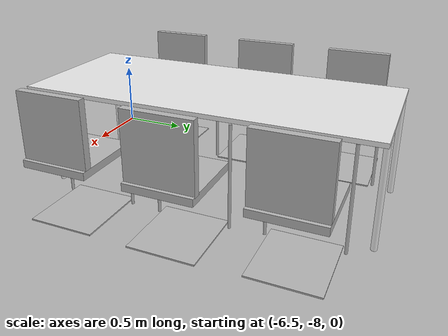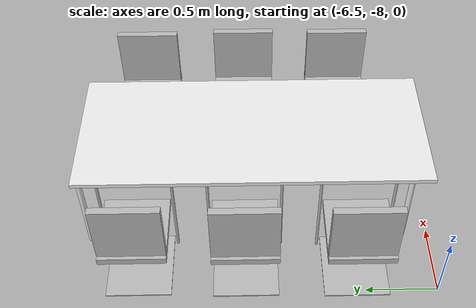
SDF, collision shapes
<sdf version="1.6">
 <model name="erica">
  <model name="table1_chair_tv">
   <model name="h_chair">
    <link name="link_0">
     <inertial>
      <mass>1</mass>
      <inertia>
       <ixx>0.166667</ixx>
       <ixy>0</ixy>
       <ixz>0</ixz>
       <iyy>0.166667</iyy>
       <iyz>0</iyz>
       <izz>0.166667</izz>
      </inertia>
     </inertial>
     <visual name="visual">
      <geometry>
       <mesh><uri>model://erica/elements/h_chair/meshes/chair.dae</uri><scale>1 1 1</scale></mesh>
      </geometry>
     </visual>
     <collision name="collision_4">
      <pose>0 0 0.41 0 -0 0</pose>
      <geometry><box><size>0.5 0.45 0.05</size></box></geometry>
      <surface>
       <friction>
        <ode><mu>1</mu><mu2>1</mu2><fdir1>0 0 0</fdir1><slip1>0</slip1><slip2>0</slip2></ode>
        <torsional>
         <coefficient>1</coefficient>
         <patch_radius>0</patch_radius>
         <surface_radius>0</surface_radius>
         <use_patch_radius>1</use_patch_radius>
         <ode><slip>0</slip></ode>
        </torsional>
       </friction>
       <bounce><restitution_coefficient>0</restitution_coefficient><threshold>1e+06</threshold></bounce>
       <contact>
        <collide_without_contact>0</collide_without_contact>
        <collide_without_contact_bitmask>1</collide_without_contact_bitmask>
        <collide_bitmask>1</collide_bitmask>
        <ode>
         <soft_cfm>0</soft_cfm>
         <soft_erp>0.2</soft_erp>
         <kp>1e+13</kp>
         <kd>1</kd>
         <max_vel>0.01</max_vel>
         <min_depth>0</min_depth>
        </ode>
        <bullet>
         <split_impulse>1</split_impulse>
         <split_impulse_penetration_threshold>-0.01</split_impulse_penetration_threshold>
         <soft_cfm>0</soft_cfm>
         <soft_erp>0.2</soft_erp>
         <kp>1e+13</kp>
         <kd>1</kd>
        </bullet>
       </contact>
      </surface>
     </collision>
     <collision name="collision_3">
      <pose>0 0 0.01 0 -0 0</pose>
      <geometry><box><size>0.5 0.45 0.01</size></box></geometry>
      <surface>
       <friction>
        <ode><mu>1</mu><mu2>1</mu2><fdir1>0 0 0</fdir1><slip1>0</slip1><slip2>0</slip2></ode>
        <torsional>
         <coefficient>1</coefficient>
         <patch_radius>0</patch_radius>
         <surface_radius>0</surface_radius>
         <use_patch_radius>1</use_patch_radius>
         <ode><slip>0</slip></ode>
        </torsional>
       </friction>
       <bounce><restitution_coefficient>0</restitution_coefficient><threshold>1e+06</threshold></bounce>
       <contact>
        <collide_without_contact>0</collide_without_contact>
        <collide_without_contact_bitmask>1</collide_without_contact_bitmask>
        <collide_bitmask>1</collide_bitmask>
        <ode>
         <soft_cfm>0</soft_cfm>
         <soft_erp>0.2</soft_erp>
         <kp>1e+13</kp>
         <kd>1</kd>
         <max_vel>0.01</max_vel>
         <min_depth>0</min_depth>
        </ode>
        <bullet>
         <split_impulse>1</split_impulse>
         <split_impulse_penetration_threshold>-0.01</split_impulse_penetration_threshold>
         <soft_cfm>0</soft_cfm>
         <soft_erp>0.2</soft_erp>
         <kp>1e+13</kp>
         <kd>1</kd>
        </bullet>
       </contact>
      </surface>
     </collision>
     <collision name="collision_5">
      <pose>-0.2 0 0.65 0 -0 0</pose>
      <geometry><box><size>0.05 0.45 0.45</size></box></geometry>
      <surface>
       <friction>
        <ode><mu>1</mu><mu2>1</mu2><fdir1>0 0 0</fdir1><slip1>0</slip1><slip2>0</slip2></ode>
        <torsional>
         <coefficient>1</coefficient>
         <patch_radius>0</patch_radius>
         <surface_radius>0</surface_radius>
         <use_patch_radius>1</use_patch_radius>
         <ode><slip>0</slip></ode>
        </torsional>
       </friction>
       <bounce><restitution_coefficient>0</restitution_coefficient><threshold>1e+06</threshold></bounce>
       <contact>
        <collide_without_contact>0</collide_without_contact>
        <collide_without_contact_bitmask>1</collide_without_contact_bitmask>
        <collide_bitmask>1</collide_bitmask>
        <ode>
         <soft_cfm>0</soft_cfm>
         <soft_erp>0.2</soft_erp>
         <kp>1e+13</kp>
         <kd>1</kd>
         <max_vel>0.01</max_vel>
         <min_depth>0</min_depth>
        </ode>
        <bullet>
         <split_impulse>1</split_impulse>
         <split_impulse_penetration_threshold>-0.01</split_impulse_penetration_threshold>
         <soft_cfm>0</soft_cfm>
         <soft_erp>0.2</soft_erp>
         <kp>1e+13</kp>
         <kd>1</kd>
        </bullet>
       </contact>
      </surface>
     </collision>
     <collision name="collision_6">
      <pose>0.2 -0.25 0.35 0 -0 0</pose>
      <geometry><cylinder><radius>0.01</radius><length>0.7</length></cylinder></geometry>
      <surface>
       <friction>
        <ode><mu>1</mu><mu2>1</mu2><fdir1>0 0 0</fdir1><slip1>0</slip1><slip2>0</slip2></ode>
        <torsional>
         <coefficient>1</coefficient>
         <patch_radius>0</patch_radius>
         <surface_radius>0</surface_radius>
         <use_patch_radius>1</use_patch_radius>
         <ode><slip>0</slip></ode>
        </torsional>
       </friction>
       <bounce><restitution_coefficient>0</restitution_coefficient><threshold>1e+06</threshold></bounce>
       <contact>
        <collide_without_contact>0</collide_without_contact>
        <collide_without_contact_bitmask>1</collide_without_contact_bitmask>
        <collide_bitmask>1</collide_bitmask>
        <ode>
         <soft_cfm>0</soft_cfm>
         <soft_erp>0.2</soft_erp>
         <kp>1e+13</kp>
         <kd>1</kd>
         <max_vel>0.01</max_vel>
         <min_depth>0</min_depth>
        </ode>
        <bullet>
         <split_impulse>1</split_impulse>
         <split_impulse_penetration_threshold>-0.01</split_impulse_penetration_threshold>
         <soft_cfm>0</soft_cfm>
         <soft_erp>0.2</soft_erp>
         <kp>1e+13</kp>
         <kd>1</kd>
        </bullet>
       </contact>
      </surface>
     </collision>
     <collision name="collision_7">
      <pose>0.2 0.25 0.35 0 -0 0</pose>
      <geometry><cylinder><radius>0.01</radius><length>0.7</length></cylinder></geometry>
      <surface>
       <friction>
        <ode><mu>1</mu><mu2>1</mu2><fdir1>0 0 0</fdir1><slip1>0</slip1><slip2>0</slip2></ode>
        <torsional>
         <coefficient>1</coefficient>
         <patch_radius>0</patch_radius>
         <surface_radius>0</surface_radius>
         <use_patch_radius>1</use_patch_radius>
         <ode><slip>0</slip></ode>
        </torsional>
       </friction>
       <bounce><restitution_coefficient>0</restitution_coefficient><threshold>1e+06</threshold></bounce>
       <contact>
        <collide_without_contact>0</collide_without_contact>
        <collide_without_contact_bitmask>1</collide_without_contact_bitmask>
        <collide_bitmask>1</collide_bitmask>
        <ode>
         <soft_cfm>0</soft_cfm>
         <soft_erp>0.2</soft_erp>
         <kp>1e+13</kp>
         <kd>1</kd>
         <max_vel>0.01</max_vel>
         <min_depth>0</min_depth>
        </ode>
        <bullet>
         <split_impulse>1</split_impulse>
         <split_impulse_penetration_threshold>-0.01</split_impulse_penetration_threshold>
         <soft_cfm>0</soft_cfm>
         <soft_erp>0.2</soft_erp>
         <kp>1e+13</kp>
         <kd>1</kd>
        </bullet>
       </contact>
      </surface>
     </collision>
    </link>
    <static>1</static>
    <pose>-0.65015 0.677818 0 0 -0 0</pose>
   </model>
   <model name="h_chair_clone">
    <link name="link_0">
     <inertial>
      <mass>1</mass>
      <inertia>
       <ixx>0.166667</ixx>
       <ixy>0</ixy>
       <ixz>0</ixz>
       <iyy>0.166667</iyy>
       <iyz>0</iyz>
       <izz>0.166667</izz>
      </inertia>
     </inertial>
     <visual name="visual">
      <geometry>
       <mesh><uri>model://erica/elements/h_chair/meshes/chair.dae</uri><scale>1 1 1</scale></mesh>
      </geometry>
     </visual>
     <collision name="collision_4">
      <pose>0 0 0.41 0 -0 0</pose>
      <geometry><box><size>0.5 0.45 0.05</size></box></geometry>
      <surface>
       <friction>
        <ode><mu>1</mu><mu2>1</mu2><fdir1>0 0 0</fdir1><slip1>0</slip1><slip2>0</slip2></ode>
        <torsional>
         <coefficient>1</coefficient>
         <patch_radius>0</patch_radius>
         <surface_radius>0</surface_radius>
         <use_patch_radius>1</use_patch_radius>
         <ode><slip>0</slip></ode>
        </torsional>
       </friction>
       <bounce><restitution_coefficient>0</restitution_coefficient><threshold>1e+06</threshold></bounce>
       <contact>
        <collide_without_contact>0</collide_without_contact>
        <collide_without_contact_bitmask>1</collide_without_contact_bitmask>
        <collide_bitmask>1</collide_bitmask>
        <ode>
         <soft_cfm>0</soft_cfm>
         <soft_erp>0.2</soft_erp>
         <kp>1e+13</kp>
         <kd>1</kd>
         <max_vel>0.01</max_vel>
         <min_depth>0</min_depth>
        </ode>
        <bullet>
         <split_impulse>1</split_impulse>
         <split_impulse_penetration_threshold>-0.01</split_impulse_penetration_threshold>
         <soft_cfm>0</soft_cfm>
         <soft_erp>0.2</soft_erp>
         <kp>1e+13</kp>
         <kd>1</kd>
        </bullet>
       </contact>
      </surface>
     </collision>
     <collision name="collision_3">
      <pose>0 0 0.01 0 -0 0</pose>
      <geometry><box><size>0.5 0.45 0.01</size></box></geometry>
      <surface>
       <friction>
        <ode><mu>1</mu><mu2>1</mu2><fdir1>0 0 0</fdir1><slip1>0</slip1><slip2>0</slip2></ode>
        <torsional>
         <coefficient>1</coefficient>
         <patch_radius>0</patch_radius>
         <surface_radius>0</surface_radius>
         <use_patch_radius>1</use_patch_radius>
         <ode><slip>0</slip></ode>
        </torsional>
       </friction>
       <bounce><restitution_coefficient>0</restitution_coefficient><threshold>1e+06</threshold></bounce>
       <contact>
        <collide_without_contact>0</collide_without_contact>
        <collide_without_contact_bitmask>1</collide_without_contact_bitmask>
        <collide_bitmask>1</collide_bitmask>
        <ode>
         <soft_cfm>0</soft_cfm>
         <soft_erp>0.2</soft_erp>
         <kp>1e+13</kp>
         <kd>1</kd>
         <max_vel>0.01</max_vel>
         <min_depth>0</min_depth>
        </ode>
        <bullet>
         <split_impulse>1</split_impulse>
         <split_impulse_penetration_threshold>-0.01</split_impulse_penetration_threshold>
         <soft_cfm>0</soft_cfm>
         <soft_erp>0.2</soft_erp>
         <kp>1e+13</kp>
         <kd>1</kd>
        </bullet>
       </contact>
      </surface>
     </collision>
     <collision name="collision_5">
      <pose>-0.2 0 0.65 0 -0 0</pose>
      <geometry><box><size>0.05 0.45 0.45</size></box></geometry>
      <surface>
       <friction>
        <ode><mu>1</mu><mu2>1</mu2><fdir1>0 0 0</fdir1><slip1>0</slip1><slip2>0</slip2></ode>
        <torsional>
         <coefficient>1</coefficient>
         <patch_radius>0</patch_radius>
         <surface_radius>0</surface_radius>
         <use_patch_radius>1</use_patch_radius>
         <ode><slip>0</slip></ode>
        </torsional>
       </friction>
       <bounce><restitution_coefficient>0</restitution_coefficient><threshold>1e+06</threshold></bounce>
       <contact>
        <collide_without_contact>0</collide_without_contact>
        <collide_without_contact_bitmask>1</collide_without_contact_bitmask>
        <collide_bitmask>1</collide_bitmask>
        <ode>
         <soft_cfm>0</soft_cfm>
         <soft_erp>0.2</soft_erp>
         <kp>1e+13</kp>
         <kd>1</kd>
         <max_vel>0.01</max_vel>
         <min_depth>0</min_depth>
        </ode>
        <bullet>
         <split_impulse>1</split_impulse>
         <split_impulse_penetration_threshold>-0.01</split_impulse_penetration_threshold>
         <soft_cfm>0</soft_cfm>
         <soft_erp>0.2</soft_erp>
         <kp>1e+13</kp>
         <kd>1</kd>
        </bullet>
       </contact>
      </surface>
     </collision>
     <collision name="collision_6">
      <pose>0.2 -0.25 0.35 0 -0 0</pose>
      <geometry><cylinder><radius>0.01</radius><length>0.7</length></cylinder></geometry>
      <surface>
       <friction>
        <ode><mu>1</mu><mu2>1</mu2><fdir1>0 0 0</fdir1><slip1>0</slip1><slip2>0</slip2></ode>
        <torsional>
         <coefficient>1</coefficient>
         <patch_radius>0</patch_radius>
         <surface_radius>0</surface_radius>
         <use_patch_radius>1</use_patch_radius>
         <ode><slip>0</slip></ode>
        </torsional>
       </friction>
       <bounce><restitution_coefficient>0</restitution_coefficient><threshold>1e+06</threshold></bounce>
       <contact>
        <collide_without_contact>0</collide_without_contact>
        <collide_without_contact_bitmask>1</collide_without_contact_bitmask>
        <collide_bitmask>1</collide_bitmask>
        <ode>
         <soft_cfm>0</soft_cfm>
         <soft_erp>0.2</soft_erp>
         <kp>1e+13</kp>
         <kd>1</kd>
         <max_vel>0.01</max_vel>
         <min_depth>0</min_depth>
        </ode>
        <bullet>
         <split_impulse>1</split_impulse>
         <split_impulse_penetration_threshold>-0.01</split_impulse_penetration_threshold>
         <soft_cfm>0</soft_cfm>
         <soft_erp>0.2</soft_erp>
         <kp>1e+13</kp>
         <kd>1</kd>
        </bullet>
       </contact>
      </surface>
     </collision>
     <collision name="collision_7">
      <pose>0.2 0.25 0.35 0 -0 0</pose>
      <geometry><cylinder><radius>0.01</radius><length>0.7</length></cylinder></geometry>
      <surface>
       <friction>
        <ode><mu>1</mu><mu2>1</mu2><fdir1>0 0 0</fdir1><slip1>0</slip1><slip2>0</slip2></ode>
        <torsional>
         <coefficient>1</coefficient>
         <patch_radius>0</patch_radius>
         <surface_radius>0</surface_radius>
         <use_patch_radius>1</use_patch_radius>
         <ode><slip>0</slip></ode>
        </torsional>
       </friction>
       <bounce><restitution_coefficient>0</restitution_coefficient><threshold>1e+06</threshold></bounce>
       <contact>
        <collide_without_contact>0</collide_without_contact>
        <collide_without_contact_bitmask>1</collide_without_contact_bitmask>
        <collide_bitmask>1</collide_bitmask>
        <ode>
         <soft_cfm>0</soft_cfm>
         <soft_erp>0.2</soft_erp>
         <kp>1e+13</kp>
         <kd>1</kd>
         <max_vel>0.01</max_vel>
         <min_depth>0</min_depth>
        </ode>
        <bullet>
         <split_impulse>1</split_impulse>
         <split_impulse_penetration_threshold>-0.01</split_impulse_penetration_threshold>
         <soft_cfm>0</soft_cfm>
         <soft_erp>0.2</soft_erp>
         <kp>1e+13</kp>
         <kd>1</kd>
        </bullet>
       </contact>
      </surface>
     </collision>
    </link>
    <static>1</static>
    <pose>-0.668032 -0.060178 0 0 -0 0</pose>
   </model>
   <model name="h_chair_clone_0">
    <link name="link_0">
     <inertial>
      <mass>1</mass>
      <inertia>
       <ixx>0.166667</ixx>
       <ixy>0</ixy>
       <ixz>0</ixz>
       <iyy>0.166667</iyy>
       <iyz>0</iyz>
       <izz>0.166667</izz>
      </inertia>
     </inertial>
     <visual name="visual">
      <geometry>
       <mesh><uri>model://erica/elements/h_chair/meshes/chair.dae</uri><scale>1 1 1</scale></mesh>
      </geometry>
     </visual>
     <collision name="collision_4">
      <pose>0 0 0.41 0 -0 0</pose>
      <geometry><box><size>0.5 0.45 0.05</size></box></geometry>
      <surface>
       <friction>
        <ode><mu>1</mu><mu2>1</mu2><fdir1>0 0 0</fdir1><slip1>0</slip1><slip2>0</slip2></ode>
        <torsional>
         <coefficient>1</coefficient>
         <patch_radius>0</patch_radius>
         <surface_radius>0</surface_radius>
         <use_patch_radius>1</use_patch_radius>
         <ode><slip>0</slip></ode>
        </torsional>
       </friction>
       <bounce><restitution_coefficient>0</restitution_coefficient><threshold>1e+06</threshold></bounce>
       <contact>
        <collide_without_contact>0</collide_without_contact>
        <collide_without_contact_bitmask>1</collide_without_contact_bitmask>
        <collide_bitmask>1</collide_bitmask>
        <ode>
         <soft_cfm>0</soft_cfm>
         <soft_erp>0.2</soft_erp>
         <kp>1e+13</kp>
         <kd>1</kd>
         <max_vel>0.01</max_vel>
         <min_depth>0</min_depth>
        </ode>
        <bullet>
         <split_impulse>1</split_impulse>
         <split_impulse_penetration_threshold>-0.01</split_impulse_penetration_threshold>
         <soft_cfm>0</soft_cfm>
         <soft_erp>0.2</soft_erp>
         <kp>1e+13</kp>
         <kd>1</kd>
        </bullet>
       </contact>
      </surface>
     </collision>
     <collision name="collision_3">
      <pose>0 0 0.01 0 -0 0</pose>
      <geometry><box><size>0.5 0.45 0.01</size></box></geometry>
      <surface>
       <friction>
        <ode><mu>1</mu><mu2>1</mu2><fdir1>0 0 0</fdir1><slip1>0</slip1><slip2>0</slip2></ode>
        <torsional>
         <coefficient>1</coefficient>
         <patch_radius>0</patch_radius>
         <surface_radius>0</surface_radius>
         <use_patch_radius>1</use_patch_radius>
         <ode><slip>0</slip></ode>
        </torsional>
       </friction>
       <bounce><restitution_coefficient>0</restitution_coefficient><threshold>1e+06</threshold></bounce>
       <contact>
        <collide_without_contact>0</collide_without_contact>
        <collide_without_contact_bitmask>1</collide_without_contact_bitmask>
        <collide_bitmask>1</collide_bitmask>
        <ode>
         <soft_cfm>0</soft_cfm>
         <soft_erp>0.2</soft_erp>
         <kp>1e+13</kp>
         <kd>1</kd>
         <max_vel>0.01</max_vel>
         <min_depth>0</min_depth>
        </ode>
        <bullet>
         <split_impulse>1</split_impulse>
         <split_impulse_penetration_threshold>-0.01</split_impulse_penetration_threshold>
         <soft_cfm>0</soft_cfm>
         <soft_erp>0.2</soft_erp>
         <kp>1e+13</kp>
         <kd>1</kd>
        </bullet>
       </contact>
      </surface>
     </collision>
     <collision name="collision_5">
      <pose>-0.2 0 0.65 0 -0 0</pose>
      <geometry><box><size>0.05 0.45 0.45</size></box></geometry>
      <surface>
       <friction>
        <ode><mu>1</mu><mu2>1</mu2><fdir1>0 0 0</fdir1><slip1>0</slip1><slip2>0</slip2></ode>
        <torsional>
         <coefficient>1</coefficient>
         <patch_radius>0</patch_radius>
         <surface_radius>0</surface_radius>
         <use_patch_radius>1</use_patch_radius>
         <ode><slip>0</slip></ode>
        </torsional>
       </friction>
       <bounce><restitution_coefficient>0</restitution_coefficient><threshold>1e+06</threshold></bounce>
       <contact>
        <collide_without_contact>0</collide_without_contact>
        <collide_without_contact_bitmask>1</collide_without_contact_bitmask>
        <collide_bitmask>1</collide_bitmask>
        <ode>
         <soft_cfm>0</soft_cfm>
         <soft_erp>0.2</soft_erp>
         <kp>1e+13</kp>
         <kd>1</kd>
         <max_vel>0.01</max_vel>
         <min_depth>0</min_depth>
        </ode>
        <bullet>
         <split_impulse>1</split_impulse>
         <split_impulse_penetration_threshold>-0.01</split_impulse_penetration_threshold>
         <soft_cfm>0</soft_cfm>
         <soft_erp>0.2</soft_erp>
         <kp>1e+13</kp>
         <kd>1</kd>
        </bullet>
       </contact>
      </surface>
     </collision>
     <collision name="collision_6">
      <pose>0.2 -0.25 0.35 0 -0 0</pose>
      <geometry><cylinder><radius>0.01</radius><length>0.7</length></cylinder></geometry>
      <surface>
       <friction>
        <ode><mu>1</mu><mu2>1</mu2><fdir1>0 0 0</fdir1><slip1>0</slip1><slip2>0</slip2></ode>
        <torsional>
         <coefficient>1</coefficient>
         <patch_radius>0</patch_radius>
         <surface_radius>0</surface_radius>
         <use_patch_radius>1</use_patch_radius>
         <ode><slip>0</slip></ode>
        </torsional>
       </friction>
       <bounce><restitution_coefficient>0</restitution_coefficient><threshold>1e+06</threshold></bounce>
       <contact>
        <collide_without_contact>0</collide_without_contact>
        <collide_without_contact_bitmask>1</collide_without_contact_bitmask>
        <collide_bitmask>1</collide_bitmask>
        <ode>
         <soft_cfm>0</soft_cfm>
         <soft_erp>0.2</soft_erp>
         <kp>1e+13</kp>
         <kd>1</kd>
         <max_vel>0.01</max_vel>
         <min_depth>0</min_depth>
        </ode>
        <bullet>
         <split_impulse>1</split_impulse>
         <split_impulse_penetration_threshold>-0.01</split_impulse_penetration_threshold>
         <soft_cfm>0</soft_cfm>
         <soft_erp>0.2</soft_erp>
         <kp>1e+13</kp>
         <kd>1</kd>
        </bullet>
       </contact>
      </surface>
     </collision>
     <collision name="collision_7">
      <pose>0.2 0.25 0.35 0 -0 0</pose>
      <geometry><cylinder><radius>0.01</radius><length>0.7</length></cylinder></geometry>
      <surface>
       <friction>
        <ode><mu>1</mu><mu2>1</mu2><fdir1>0 0 0</fdir1><slip1>0</slip1><slip2>0</slip2></ode>
        <torsional>
         <coefficient>1</coefficient>
         <patch_radius>0</patch_radius>
         <surface_radius>0</surface_radius>
         <use_patch_radius>1</use_patch_radius>
         <ode><slip>0</slip></ode>
        </torsional>
       </friction>
       <bounce><restitution_coefficient>0</restitution_coefficient><threshold>1e+06</threshold></bounce>
       <contact>
        <collide_without_contact>0</collide_without_contact>
        <collide_without_contact_bitmask>1</collide_without_contact_bitmask>
        <collide_bitmask>1</collide_bitmask>
        <ode>
         <soft_cfm>0</soft_cfm>
         <soft_erp>0.2</soft_erp>
         <kp>1e+13</kp>
         <kd>1</kd>
         <max_vel>0.01</max_vel>
         <min_depth>0</min_depth>
        </ode>
        <bullet>
         <split_impulse>1</split_impulse>
         <split_impulse_penetration_threshold>-0.01</split_impulse_penetration_threshold>
         <soft_cfm>0</soft_cfm>
         <soft_erp>0.2</soft_erp>
         <kp>1e+13</kp>
         <kd>1</kd>
        </bullet>
       </contact>
      </surface>
     </collision>
    </link>
    <static>1</static>
    <pose>-0.679941 -0.822301 0 0 -0 0</pose>
   </model>
   <model name="h_chair_clone_1">
    <link name="link_0">
     <inertial>
      <mass>1</mass>
      <inertia>
       <ixx>0.166667</ixx>
       <ixy>0</ixy>
       <ixz>0</ixz>
       <iyy>0.166667</iyy>
       <iyz>0</iyz>
       <izz>0.166667</izz>
      </inertia>
     </inertial>
     <visual name="visual">
      <geometry>
       <mesh><uri>model://erica/elements/h_chair/meshes/chair.dae</uri><scale>1 1 1</scale></mesh>
      </geometry>
     </visual>
     <collision name="collision_4">
      <pose>0 0 0.41 0 -0 0</pose>
      <geometry><box><size>0.5 0.45 0.05</size></box></geometry>
      <surface>
       <friction>
        <ode><mu>1</mu><mu2>1</mu2><fdir1>0 0 0</fdir1><slip1>0</slip1><slip2>0</slip2></ode>
        <torsional>
         <coefficient>1</coefficient>
         <patch_radius>0</patch_radius>
         <surface_radius>0</surface_radius>
         <use_patch_radius>1</use_patch_radius>
         <ode><slip>0</slip></ode>
        </torsional>
       </friction>
       <bounce><restitution_coefficient>0</restitution_coefficient><threshold>1e+06</threshold></bounce>
       <contact>
        <collide_without_contact>0</collide_without_contact>
        <collide_without_contact_bitmask>1</collide_without_contact_bitmask>
        <collide_bitmask>1</collide_bitmask>
        <ode>
         <soft_cfm>0</soft_cfm>
         <soft_erp>0.2</soft_erp>
         <kp>1e+13</kp>
         <kd>1</kd>
         <max_vel>0.01</max_vel>
         <min_depth>0</min_depth>
        </ode>
        <bullet>
         <split_impulse>1</split_impulse>
         <split_impulse_penetration_threshold>-0.01</split_impulse_penetration_threshold>
         <soft_cfm>0</soft_cfm>
         <soft_erp>0.2</soft_erp>
         <kp>1e+13</kp>
         <kd>1</kd>
        </bullet>
       </contact>
      </surface>
     </collision>
     <collision name="collision_3">
      <pose>0 0 0.01 0 -0 0</pose>
      <geometry><box><size>0.5 0.45 0.01</size></box></geometry>
      <surface>
       <friction>
        <ode><mu>1</mu><mu2>1</mu2><fdir1>0 0 0</fdir1><slip1>0</slip1><slip2>0</slip2></ode>
        <torsional>
         <coefficient>1</coefficient>
         <patch_radius>0</patch_radius>
         <surface_radius>0</surface_radius>
         <use_patch_radius>1</use_patch_radius>
         <ode><slip>0</slip></ode>
        </torsional>
       </friction>
       <bounce><restitution_coefficient>0</restitution_coefficient><threshold>1e+06</threshold></bounce>
       <contact>
        <collide_without_contact>0</collide_without_contact>
        <collide_without_contact_bitmask>1</collide_without_contact_bitmask>
        <collide_bitmask>1</collide_bitmask>
        <ode>
         <soft_cfm>0</soft_cfm>
         <soft_erp>0.2</soft_erp>
         <kp>1e+13</kp>
         <kd>1</kd>
         <max_vel>0.01</max_vel>
         <min_depth>0</min_depth>
        </ode>
        <bullet>
         <split_impulse>1</split_impulse>
         <split_impulse_penetration_threshold>-0.01</split_impulse_penetration_threshold>
         <soft_cfm>0</soft_cfm>
         <soft_erp>0.2</soft_erp>
         <kp>1e+13</kp>
         <kd>1</kd>
        </bullet>
       </contact>
      </surface>
     </collision>
     <collision name="collision_5">
      <pose>-0.2 0 0.65 0 -0 0</pose>
      <geometry><box><size>0.05 0.45 0.45</size></box></geometry>
      <surface>
       <friction>
        <ode><mu>1</mu><mu2>1</mu2><fdir1>0 0 0</fdir1><slip1>0</slip1><slip2>0</slip2></ode>
        <torsional>
         <coefficient>1</coefficient>
         <patch_radius>0</patch_radius>
         <surface_radius>0</surface_radius>
         <use_patch_radius>1</use_patch_radius>
         <ode><slip>0</slip></ode>
        </torsional>
       </friction>
       <bounce><restitution_coefficient>0</restitution_coefficient><threshold>1e+06</threshold></bounce>
       <contact>
        <collide_without_contact>0</collide_without_contact>
        <collide_without_contact_bitmask>1</collide_without_contact_bitmask>
        <collide_bitmask>1</collide_bitmask>
        <ode>
         <soft_cfm>0</soft_cfm>
         <soft_erp>0.2</soft_erp>
         <kp>1e+13</kp>
         <kd>1</kd>
         <max_vel>0.01</max_vel>
         <min_depth>0</min_depth>
        </ode>
        <bullet>
         <split_impulse>1</split_impulse>
         <split_impulse_penetration_threshold>-0.01</split_impulse_penetration_threshold>
         <soft_cfm>0</soft_cfm>
         <soft_erp>0.2</soft_erp>
         <kp>1e+13</kp>
         <kd>1</kd>
        </bullet>
       </contact>
      </surface>
     </collision>
     <collision name="collision_6">
      <pose>0.2 -0.25 0.35 0 -0 0</pose>
      <geometry><cylinder><radius>0.01</radius><length>0.7</length></cylinder></geometry>
      <surface>
       <friction>
        <ode><mu>1</mu><mu2>1</mu2><fdir1>0 0 0</fdir1><slip1>0</slip1><slip2>0</slip2></ode>
        <torsional>
         <coefficient>1</coefficient>
         <patch_radius>0</patch_radius>
         <surface_radius>0</surface_radius>
         <use_patch_radius>1</use_patch_radius>
         <ode><slip>0</slip></ode>
        </torsional>
       </friction>
       <bounce><restitution_coefficient>0</restitution_coefficient><threshold>1e+06</threshold></bounce>
       <contact>
        <collide_without_contact>0</collide_without_contact>
        <collide_without_contact_bitmask>1</collide_without_contact_bitmask>
        <collide_bitmask>1</collide_bitmask>
        <ode>
         <soft_cfm>0</soft_cfm>
         <soft_erp>0.2</soft_erp>
         <kp>1e+13</kp>
         <kd>1</kd>
         <max_vel>0.01</max_vel>
         <min_depth>0</min_depth>
        </ode>
        <bullet>
         <split_impulse>1</split_impulse>
         <split_impulse_penetration_threshold>-0.01</split_impulse_penetration_threshold>
         <soft_cfm>0</soft_cfm>
         <soft_erp>0.2</soft_erp>
         <kp>1e+13</kp>
         <kd>1</kd>
        </bullet>
       </contact>
      </surface>
     </collision>
     <collision name="collision_7">
      <pose>0.2 0.25 0.35 0 -0 0</pose>
      <geometry><cylinder><radius>0.01</radius><length>0.7</length></cylinder></geometry>
      <surface>
       <friction>
        <ode><mu>1</mu><mu2>1</mu2><fdir1>0 0 0</fdir1><slip1>0</slip1><slip2>0</slip2></ode>
        <torsional>
         <coefficient>1</coefficient>
         <patch_radius>0</patch_radius>
         <surface_radius>0</surface_radius>
         <use_patch_radius>1</use_patch_radius>
         <ode><slip>0</slip></ode>
        </torsional>
       </friction>
       <bounce><restitution_coefficient>0</restitution_coefficient><threshold>1e+06</threshold></bounce>
       <contact>
        <collide_without_contact>0</collide_without_contact>
        <collide_without_contact_bitmask>1</collide_without_contact_bitmask>
        <collide_bitmask>1</collide_bitmask>
        <ode>
         <soft_cfm>0</soft_cfm>
         <soft_erp>0.2</soft_erp>
         <kp>1e+13</kp>
         <kd>1</kd>
         <max_vel>0.01</max_vel>
         <min_depth>0</min_depth>
        </ode>
        <bullet>
         <split_impulse>1</split_impulse>
         <split_impulse_penetration_threshold>-0.01</split_impulse_penetration_threshold>
         <soft_cfm>0</soft_cfm>
         <soft_erp>0.2</soft_erp>
         <kp>1e+13</kp>
         <kd>1</kd>
        </bullet>
       </contact>
      </surface>
     </collision>
    </link>
    <static>1</static>
    <pose>0.664034 0.665185 0 0 -0 3.13853</pose>
   </model>
   <model name="h_chair_clone_1_clone">
    <link name="link_0">
     <inertial>
      <mass>1</mass>
      <inertia>
       <ixx>0.166667</ixx>
       <ixy>0</ixy>
       <ixz>0</ixz>
       <iyy>0.166667</iyy>
       <iyz>0</iyz>
       <izz>0.166667</izz>
      </inertia>
     </inertial>
     <visual name="visual">
      <geometry>
       <mesh><uri>model://erica/elements/h_chair/meshes/chair.dae</uri><scale>1 1 1</scale></mesh>
      </geometry>
     </visual>
     <collision name="collision_4">
      <pose>0 0 0.41 0 -0 0</pose>
      <geometry><box><size>0.5 0.45 0.05</size></box></geometry>
      <surface>
       <friction>
        <ode><mu>1</mu><mu2>1</mu2><fdir1>0 0 0</fdir1><slip1>0</slip1><slip2>0</slip2></ode>
        <torsional>
         <coefficient>1</coefficient>
         <patch_radius>0</patch_radius>
         <surface_radius>0</surface_radius>
         <use_patch_radius>1</use_patch_radius>
         <ode><slip>0</slip></ode>
        </torsional>
       </friction>
       <bounce><restitution_coefficient>0</restitution_coefficient><threshold>1e+06</threshold></bounce>
       <contact>
        <collide_without_contact>0</collide_without_contact>
        <collide_without_contact_bitmask>1</collide_without_contact_bitmask>
        <collide_bitmask>1</collide_bitmask>
        <ode>
         <soft_cfm>0</soft_cfm>
         <soft_erp>0.2</soft_erp>
         <kp>1e+13</kp>
         <kd>1</kd>
         <max_vel>0.01</max_vel>
         <min_depth>0</min_depth>
        </ode>
        <bullet>
         <split_impulse>1</split_impulse>
         <split_impulse_penetration_threshold>-0.01</split_impulse_penetration_threshold>
         <soft_cfm>0</soft_cfm>
         <soft_erp>0.2</soft_erp>
         <kp>1e+13</kp>
         <kd>1</kd>
        </bullet>
       </contact>
      </surface>
     </collision>
     <collision name="collision_3">
      <pose>0 0 0.01 0 -0 0</pose>
      <geometry><box><size>0.5 0.45 0.01</size></box></geometry>
      <surface>
       <friction>
        <ode><mu>1</mu><mu2>1</mu2><fdir1>0 0 0</fdir1><slip1>0</slip1><slip2>0</slip2></ode>
        <torsional>
         <coefficient>1</coefficient>
         <patch_radius>0</patch_radius>
         <surface_radius>0</surface_radius>
         <use_patch_radius>1</use_patch_radius>
         <ode><slip>0</slip></ode>
        </torsional>
       </friction>
       <bounce><restitution_coefficient>0</restitution_coefficient><threshold>1e+06</threshold></bounce>
       <contact>
        <collide_without_contact>0</collide_without_contact>
        <collide_without_contact_bitmask>1</collide_without_contact_bitmask>
        <collide_bitmask>1</collide_bitmask>
        <ode>
         <soft_cfm>0</soft_cfm>
         <soft_erp>0.2</soft_erp>
         <kp>1e+13</kp>
         <kd>1</kd>
         <max_vel>0.01</max_vel>
         <min_depth>0</min_depth>
        </ode>
        <bullet>
         <split_impulse>1</split_impulse>
         <split_impulse_penetration_threshold>-0.01</split_impulse_penetration_threshold>
         <soft_cfm>0</soft_cfm>
         <soft_erp>0.2</soft_erp>
         <kp>1e+13</kp>
         <kd>1</kd>
        </bullet>
       </contact>
      </surface>
     </collision>
     <collision name="collision_5">
      <pose>-0.2 0 0.65 0 -0 0</pose>
      <geometry><box><size>0.05 0.45 0.45</size></box></geometry>
      <surface>
       <friction>
        <ode><mu>1</mu><mu2>1</mu2><fdir1>0 0 0</fdir1><slip1>0</slip1><slip2>0</slip2></ode>
        <torsional>
         <coefficient>1</coefficient>
         <patch_radius>0</patch_radius>
         <surface_radius>0</surface_radius>
         <use_patch_radius>1</use_patch_radius>
         <ode><slip>0</slip></ode>
        </torsional>
       </friction>
       <bounce><restitution_coefficient>0</restitution_coefficient><threshold>1e+06</threshold></bounce>
       <contact>
        <collide_without_contact>0</collide_without_contact>
        <collide_without_contact_bitmask>1</collide_without_contact_bitmask>
        <collide_bitmask>1</collide_bitmask>
        <ode>
         <soft_cfm>0</soft_cfm>
         <soft_erp>0.2</soft_erp>
         <kp>1e+13</kp>
         <kd>1</kd>
         <max_vel>0.01</max_vel>
         <min_depth>0</min_depth>
        </ode>
        <bullet>
         <split_impulse>1</split_impulse>
         <split_impulse_penetration_threshold>-0.01</split_impulse_penetration_threshold>
         <soft_cfm>0</soft_cfm>
         <soft_erp>0.2</soft_erp>
         <kp>1e+13</kp>
         <kd>1</kd>
        </bullet>
       </contact>
      </surface>
     </collision>
     <collision name="collision_6">
      <pose>0.2 -0.25 0.35 0 -0 0</pose>
      <geometry><cylinder><radius>0.01</radius><length>0.7</length></cylinder></geometry>
      <surface>
       <friction>
        <ode><mu>1</mu><mu2>1</mu2><fdir1>0 0 0</fdir1><slip1>0</slip1><slip2>0</slip2></ode>
        <torsional>
         <coefficient>1</coefficient>
         <patch_radius>0</patch_radius>
         <surface_radius>0</surface_radius>
         <use_patch_radius>1</use_patch_radius>
         <ode><slip>0</slip></ode>
        </torsional>
       </friction>
       <bounce><restitution_coefficient>0</restitution_coefficient><threshold>1e+06</threshold></bounce>
       <contact>
        <collide_without_contact>0</collide_without_contact>
        <collide_without_contact_bitmask>1</collide_without_contact_bitmask>
        <collide_bitmask>1</collide_bitmask>
        <ode>
         <soft_cfm>0</soft_cfm>
         <soft_erp>0.2</soft_erp>
         <kp>1e+13</kp>
         <kd>1</kd>
         <max_vel>0.01</max_vel>
         <min_depth>0</min_depth>
        </ode>
        <bullet>
         <split_impulse>1</split_impulse>
         <split_impulse_penetration_threshold>-0.01</split_impulse_penetration_threshold>
         <soft_cfm>0</soft_cfm>
         <soft_erp>0.2</soft_erp>
         <kp>1e+13</kp>
         <kd>1</kd>
        </bullet>
       </contact>
      </surface>
     </collision>
     <collision name="collision_7">
      <pose>0.2 0.25 0.35 0 -0 0</pose>
      <geometry><cylinder><radius>0.01</radius><length>0.7</length></cylinder></geometry>
      <surface>
       <friction>
        <ode><mu>1</mu><mu2>1</mu2><fdir1>0 0 0</fdir1><slip1>0</slip1><slip2>0</slip2></ode>
        <torsional>
         <coefficient>1</coefficient>
         <patch_radius>0</patch_radius>
         <surface_radius>0</surface_radius>
         <use_patch_radius>1</use_patch_radius>
         <ode><slip>0</slip></ode>
        </torsional>
       </friction>
       <bounce><restitution_coefficient>0</restitution_coefficient><threshold>1e+06</threshold></bounce>
       <contact>
        <collide_without_contact>0</collide_without_contact>
        <collide_without_contact_bitmask>1</collide_without_contact_bitmask>
        <collide_bitmask>1</collide_bitmask>
        <ode>
         <soft_cfm>0</soft_cfm>
         <soft_erp>0.2</soft_erp>
         <kp>1e+13</kp>
         <kd>1</kd>
         <max_vel>0.01</max_vel>
         <min_depth>0</min_depth>
        </ode>
        <bullet>
         <split_impulse>1</split_impulse>
         <split_impulse_penetration_threshold>-0.01</split_impulse_penetration_threshold>
         <soft_cfm>0</soft_cfm>
         <soft_erp>0.2</soft_erp>
         <kp>1e+13</kp>
         <kd>1</kd>
        </bullet>
       </contact>
      </surface>
     </collision>
    </link>
    <static>1</static>
    <pose>0.671484 -0.777358 0 0 -0 3.13853</pose>
   </model>
   <model name="h_chair_clone_1_clone_clone">
    <link name="link_0">
     <inertial>
      <mass>1</mass>
      <inertia>
       <ixx>0.166667</ixx>
       <ixy>0</ixy>
       <ixz>0</ixz>
       <iyy>0.166667</iyy>
       <iyz>0</iyz>
       <izz>0.166667</izz>
      </inertia>
     </inertial>
     <visual name="visual">
      <geometry>
       <mesh><uri>model://erica/elements/h_chair/meshes/chair.dae</uri><scale>1 1 1</scale></mesh>
      </geometry>
     </visual>
     <collision name="collision_4">
      <pose>0 0 0.41 0 -0 0</pose>
      <geometry><box><size>0.5 0.45 0.05</size></box></geometry>
      <surface>
       <friction>
        <ode><mu>1</mu><mu2>1</mu2><fdir1>0 0 0</fdir1><slip1>0</slip1><slip2>0</slip2></ode>
        <torsional>
         <coefficient>1</coefficient>
         <patch_radius>0</patch_radius>
         <surface_radius>0</surface_radius>
         <use_patch_radius>1</use_patch_radius>
         <ode><slip>0</slip></ode>
        </torsional>
       </friction>
       <bounce><restitution_coefficient>0</restitution_coefficient><threshold>1e+06</threshold></bounce>
       <contact>
        <collide_without_contact>0</collide_without_contact>
        <collide_without_contact_bitmask>1</collide_without_contact_bitmask>
        <collide_bitmask>1</collide_bitmask>
        <ode>
         <soft_cfm>0</soft_cfm>
         <soft_erp>0.2</soft_erp>
         <kp>1e+13</kp>
         <kd>1</kd>
         <max_vel>0.01</max_vel>
         <min_depth>0</min_depth>
        </ode>
        <bullet>
         <split_impulse>1</split_impulse>
         <split_impulse_penetration_threshold>-0.01</split_impulse_penetration_threshold>
         <soft_cfm>0</soft_cfm>
         <soft_erp>0.2</soft_erp>
         <kp>1e+13</kp>
         <kd>1</kd>
        </bullet>
       </contact>
      </surface>
     </collision>
     <collision name="collision_3">
      <pose>0 0 0.01 0 -0 0</pose>
      <geometry><box><size>0.5 0.45 0.01</size></box></geometry>
      <surface>
       <friction>
        <ode><mu>1</mu><mu2>1</mu2><fdir1>0 0 0</fdir1><slip1>0</slip1><slip2>0</slip2></ode>
        <torsional>
         <coefficient>1</coefficient>
         <patch_radius>0</patch_radius>
         <surface_radius>0</surface_radius>
         <use_patch_radius>1</use_patch_radius>
         <ode><slip>0</slip></ode>
        </torsional>
       </friction>
       <bounce><restitution_coefficient>0</restitution_coefficient><threshold>1e+06</threshold></bounce>
       <contact>
        <collide_without_contact>0</collide_without_contact>
        <collide_without_contact_bitmask>1</collide_without_contact_bitmask>
        <collide_bitmask>1</collide_bitmask>
        <ode>
         <soft_cfm>0</soft_cfm>
         <soft_erp>0.2</soft_erp>
         <kp>1e+13</kp>
         <kd>1</kd>
         <max_vel>0.01</max_vel>
         <min_depth>0</min_depth>
        </ode>
        <bullet>
         <split_impulse>1</split_impulse>
         <split_impulse_penetration_threshold>-0.01</split_impulse_penetration_threshold>
         <soft_cfm>0</soft_cfm>
         <soft_erp>0.2</soft_erp>
         <kp>1e+13</kp>
         <kd>1</kd>
        </bullet>
       </contact>
      </surface>
     </collision>
     <collision name="collision_5">
      <pose>-0.2 0 0.65 0 -0 0</pose>
      <geometry><box><size>0.05 0.45 0.45</size></box></geometry>
      <surface>
       <friction>
        <ode><mu>1</mu><mu2>1</mu2><fdir1>0 0 0</fdir1><slip1>0</slip1><slip2>0</slip2></ode>
        <torsional>
         <coefficient>1</coefficient>
         <patch_radius>0</patch_radius>
         <surface_radius>0</surface_radius>
         <use_patch_radius>1</use_patch_radius>
         <ode><slip>0</slip></ode>
        </torsional>
       </friction>
       <bounce><restitution_coefficient>0</restitution_coefficient><threshold>1e+06</threshold></bounce>
       <contact>
        <collide_without_contact>0</collide_without_contact>
        <collide_without_contact_bitmask>1</collide_without_contact_bitmask>
        <collide_bitmask>1</collide_bitmask>
        <ode>
         <soft_cfm>0</soft_cfm>
         <soft_erp>0.2</soft_erp>
         <kp>1e+13</kp>
         <kd>1</kd>
         <max_vel>0.01</max_vel>
         <min_depth>0</min_depth>
        </ode>
        <bullet>
         <split_impulse>1</split_impulse>
         <split_impulse_penetration_threshold>-0.01</split_impulse_penetration_threshold>
         <soft_cfm>0</soft_cfm>
         <soft_erp>0.2</soft_erp>
         <kp>1e+13</kp>
         <kd>1</kd>
        </bullet>
       </contact>
      </surface>
     </collision>
     <collision name="collision_6">
      <pose>0.2 -0.25 0.35 0 -0 0</pose>
      <geometry><cylinder><radius>0.01</radius><length>0.7</length></cylinder></geometry>
      <surface>
       <friction>
        <ode><mu>1</mu><mu2>1</mu2><fdir1>0 0 0</fdir1><slip1>0</slip1><slip2>0</slip2></ode>
        <torsional>
         <coefficient>1</coefficient>
         <patch_radius>0</patch_radius>
         <surface_radius>0</surface_radius>
         <use_patch_radius>1</use_patch_radius>
         <ode><slip>0</slip></ode>
        </torsional>
       </friction>
       <bounce><restitution_coefficient>0</restitution_coefficient><threshold>1e+06</threshold></bounce>
       <contact>
        <collide_without_contact>0</collide_without_contact>
        <collide_without_contact_bitmask>1</collide_without_contact_bitmask>
        <collide_bitmask>1</collide_bitmask>
        <ode>
         <soft_cfm>0</soft_cfm>
         <soft_erp>0.2</soft_erp>
         <kp>1e+13</kp>
         <kd>1</kd>
         <max_vel>0.01</max_vel>
         <min_depth>0</min_depth>
        </ode>
        <bullet>
         <split_impulse>1</split_impulse>
         <split_impulse_penetration_threshold>-0.01</split_impulse_penetration_threshold>
         <soft_cfm>0</soft_cfm>
         <soft_erp>0.2</soft_erp>
         <kp>1e+13</kp>
         <kd>1</kd>
        </bullet>
       </contact>
      </surface>
     </collision>
     <collision name="collision_7">
      <pose>0.2 0.25 0.35 0 -0 0</pose>
      <geometry><cylinder><radius>0.01</radius><length>0.7</length></cylinder></geometry>
      <surface>
       <friction>
        <ode><mu>1</mu><mu2>1</mu2><fdir1>0 0 0</fdir1><slip1>0</slip1><slip2>0</slip2></ode>
        <torsional>
         <coefficient>1</coefficient>
         <patch_radius>0</patch_radius>
         <surface_radius>0</surface_radius>
         <use_patch_radius>1</use_patch_radius>
         <ode><slip>0</slip></ode>
        </torsional>
       </friction>
       <bounce><restitution_coefficient>0</restitution_coefficient><threshold>1e+06</threshold></bounce>
       <contact>
        <collide_without_contact>0</collide_without_contact>
        <collide_without_contact_bitmask>1</collide_without_contact_bitmask>
        <collide_bitmask>1</collide_bitmask>
        <ode>
         <soft_cfm>0</soft_cfm>
         <soft_erp>0.2</soft_erp>
         <kp>1e+13</kp>
         <kd>1</kd>
         <max_vel>0.01</max_vel>
         <min_depth>0</min_depth>
        </ode>
        <bullet>
         <split_impulse>1</split_impulse>
         <split_impulse_penetration_threshold>-0.01</split_impulse_penetration_threshold>
         <soft_cfm>0</soft_cfm>
         <soft_erp>0.2</soft_erp>
         <kp>1e+13</kp>
         <kd>1</kd>
        </bullet>
       </contact>
      </surface>
     </collision>
    </link>
    <static>1</static>
    <pose>0.685434 -0.0617 0 0 -0 3.13853</pose>
   </model>
   <model name="h_table">
    <link name="link">
     <inertial>
      <inertia><ixx>1</ixx><ixy>0</ixy><ixz>0</ixz><iyy>1</iyy><iyz>0</iyz><izz>1</izz></inertia>
      <mass>1</mass>
     </inertial>
     <visual name="visual1">
      <pose>-0.5 0 0.72 0 -0 0</pose>
      <geometry><box><size>2.4 1 0.04</size></box></geometry>
      <material>
       <script><uri>file://media/materials/scripts/gazebo.material</uri><name>Gazebo/White</name></script>
       <ambient>1 1 1 1</ambient>
       <diffuse>1 1 1 1</diffuse>
       <specular>0.2 0.2 0.2 1</specular>
       <emissive>0 0 0 1</emissive>
       <shader type="vertex"><normal_map>__default__</normal_map></shader>
      </material>
     </visual>
     <visual name="front_right_leg">
      <pose>0.68 -0.38 0.36 0 -0 0</pose>
      <geometry><cylinder><radius>0.02</radius><length>0.72</length></cylinder></geometry>
      <material>
       <script><uri>file://media/materials/scripts/gazebo.material</uri><name>Gazebo/White</name></script>
       <ambient>0.3 0.3 0.3 1</ambient>
       <diffuse>0.7 0.7 0.7 1</diffuse>
       <specular>0.01 0.01 0.01 1</specular>
       <emissive>0 0 0 1</emissive>
       <shader type="vertex"><normal_map>__default__</normal_map></shader>
      </material>
     </visual>
     <visual name="back_left_leg">
      <pose>-1.58 0.38 0.36 0 -0 0</pose>
      <geometry><cylinder><radius>0.02</radius><length>0.72</length></cylinder></geometry>
      <material>
       <script><uri>file://media/materials/scripts/gazebo.material</uri><name>Gazebo/White</name></script>
       <ambient>0.3 0.3 0.3 1</ambient>
       <diffuse>0.7 0.7 0.7 1</diffuse>
       <specular>0.01 0.01 0.01 1</specular>
       <emissive>0 0 0 1</emissive>
       <shader type="vertex"><normal_map>__default__</normal_map></shader>
      </material>
     </visual>
     <visual name="back_right_leg">
      <pose>-1.58 -0.38 0.36 0 -0 0</pose>
      <geometry><cylinder><radius>0.02</radius><length>0.72</length></cylinder></geometry>
      <material>
       <script><uri>file://media/materials/scripts/gazebo.material</uri><name>Gazebo/White</name></script>
       <ambient>0.3 0.3 0.3 1</ambient>
       <diffuse>0.7 0.7 0.7 1</diffuse>
       <specular>0.01 0.01 0.01 1</specular>
       <emissive>0 0 0 1</emissive>
       <shader type="vertex"><normal_map>__default__</normal_map></shader>
      </material>
     </visual>
     <visual name="front_left_leg">
      <pose>0.68 0.38 0.36 0 -0 0</pose>
      <geometry><cylinder><radius>0.02</radius><length>0.72</length></cylinder></geometry>
      <material>
       <script><uri>file://media/materials/scripts/gazebo.material</uri><name>Gazebo/White</name></script>
       <ambient>0.3 0.3 0.3 1</ambient>
       <diffuse>0.7 0.7 0.7 1</diffuse>
       <specular>0.01 0.01 0.01 1</specular>
       <emissive>0 0 0 1</emissive>
       <shader type="vertex"><normal_map>__default__</normal_map></shader>
      </material>
     </visual>
     <collision name="back_right_leg">
      <pose>-1.58 -0.38 0.36 0 -0 0</pose>
      <geometry><cylinder><radius>0.02</radius><length>0.72</length></cylinder></geometry>
      <surface>
       <friction>
        <ode><mu>1</mu><mu2>1</mu2><fdir1>0 0 0</fdir1><slip1>0</slip1><slip2>0</slip2></ode>
        <torsional>
         <coefficient>1</coefficient>
         <patch_radius>0</patch_radius>
         <surface_radius>0</surface_radius>
         <use_patch_radius>1</use_patch_radius>
         <ode><slip>0</slip></ode>
        </torsional>
       </friction>
       <bounce><restitution_coefficient>0</restitution_coefficient><threshold>1e+06</threshold></bounce>
       <contact>
        <collide_without_contact>0</collide_without_contact>
        <collide_without_contact_bitmask>1</collide_without_contact_bitmask>
        <collide_bitmask>1</collide_bitmask>
        <ode>
         <soft_cfm>0</soft_cfm>
         <soft_erp>0.2</soft_erp>
         <kp>1e+13</kp>
         <kd>1</kd>
         <max_vel>0.01</max_vel>
         <min_depth>0</min_depth>
        </ode>
        <bullet>
         <split_impulse>1</split_impulse>
         <split_impulse_penetration_threshold>-0.01</split_impulse_penetration_threshold>
         <soft_cfm>0</soft_cfm>
         <soft_erp>0.2</soft_erp>
         <kp>1e+13</kp>
         <kd>1</kd>
        </bullet>
       </contact>
      </surface>
     </collision>
     <collision name="surface">
      <pose>-0.5 0 0.72 0 -0 0</pose>
      <geometry><box><size>2.4 1 0.03</size></box></geometry>
      <surface>
       <friction>
        <ode><mu>0.6</mu><mu2>0.6</mu2><fdir1>0 0 0</fdir1><slip1>0</slip1><slip2>0</slip2></ode>
        <torsional>
         <coefficient>1</coefficient>
         <patch_radius>0</patch_radius>
         <surface_radius>0</surface_radius>
         <use_patch_radius>1</use_patch_radius>
         <ode><slip>0</slip></ode>
        </torsional>
       </friction>
       <bounce><restitution_coefficient>0</restitution_coefficient><threshold>1e+06</threshold></bounce>
       <contact>
        <collide_without_contact>0</collide_without_contact>
        <collide_without_contact_bitmask>1</collide_without_contact_bitmask>
        <collide_bitmask>1</collide_bitmask>
        <ode>
         <soft_cfm>0</soft_cfm>
         <soft_erp>0.2</soft_erp>
         <kp>1e+13</kp>
         <kd>1</kd>
         <max_vel>0.01</max_vel>
         <min_depth>0</min_depth>
        </ode>
        <bullet>
         <split_impulse>1</split_impulse>
         <split_impulse_penetration_threshold>-0.01</split_impulse_penetration_threshold>
         <soft_cfm>0</soft_cfm>
         <soft_erp>0.2</soft_erp>
         <kp>1e+13</kp>
         <kd>1</kd>
        </bullet>
       </contact>
      </surface>
     </collision>
     <collision name="back_left_leg">
      <pose>-1.58 0.38 0.36 0 -0 0</pose>
      <geometry><cylinder><radius>0.02</radius><length>0.72</length></cylinder></geometry>
      <surface>
       <friction>
        <ode><mu>1</mu><mu2>1</mu2><fdir1>0 0 0</fdir1><slip1>0</slip1><slip2>0</slip2></ode>
        <torsional>
         <coefficient>1</coefficient>
         <patch_radius>0</patch_radius>
         <surface_radius>0</surface_radius>
         <use_patch_radius>1</use_patch_radius>
         <ode><slip>0</slip></ode>
        </torsional>
       </friction>
       <bounce><restitution_coefficient>0</restitution_coefficient><threshold>1e+06</threshold></bounce>
       <contact>
        <collide_without_contact>0</collide_without_contact>
        <collide_without_contact_bitmask>1</collide_without_contact_bitmask>
        <collide_bitmask>1</collide_bitmask>
        <ode>
         <soft_cfm>0</soft_cfm>
         <soft_erp>0.2</soft_erp>
         <kp>1e+13</kp>
         <kd>1</kd>
         <max_vel>0.01</max_vel>
         <min_depth>0</min_depth>
        </ode>
        <bullet>
         <split_impulse>1</split_impulse>
         <split_impulse_penetration_threshold>-0.01</split_impulse_penetration_threshold>
         <soft_cfm>0</soft_cfm>
         <soft_erp>0.2</soft_erp>
         <kp>1e+13</kp>
         <kd>1</kd>
        </bullet>
       </contact>
      </surface>
     </collision>
     <collision name="front_right_leg">
      <pose>0.68 -0.38 0.36 0 -0 0</pose>
      <geometry><cylinder><radius>0.02</radius><length>0.72</length></cylinder></geometry>
      <surface>
       <friction>
        <ode><mu>1</mu><mu2>1</mu2><fdir1>0 0 0</fdir1><slip1>0</slip1><slip2>0</slip2></ode>
        <torsional>
         <coefficient>1</coefficient>
         <patch_radius>0</patch_radius>
         <surface_radius>0</surface_radius>
         <use_patch_radius>1</use_patch_radius>
         <ode><slip>0</slip></ode>
        </torsional>
       </friction>
       <bounce><restitution_coefficient>0</restitution_coefficient><threshold>1e+06</threshold></bounce>
       <contact>
        <collide_without_contact>0</collide_without_contact>
        <collide_without_contact_bitmask>1</collide_without_contact_bitmask>
        <collide_bitmask>1</collide_bitmask>
        <ode>
         <soft_cfm>0</soft_cfm>
         <soft_erp>0.2</soft_erp>
         <kp>1e+13</kp>
         <kd>1</kd>
         <max_vel>0.01</max_vel>
         <min_depth>0</min_depth>
        </ode>
        <bullet>
         <split_impulse>1</split_impulse>
         <split_impulse_penetration_threshold>-0.01</split_impulse_penetration_threshold>
         <soft_cfm>0</soft_cfm>
         <soft_erp>0.2</soft_erp>
         <kp>1e+13</kp>
         <kd>1</kd>
        </bullet>
       </contact>
      </surface>
     </collision>
     <collision name="front_left_leg">
      <pose>0.68 0.38 0.36 0 -0 0</pose>
      <geometry><cylinder><radius>0.02</radius><length>0.72</length></cylinder></geometry>
      <surface>
       <friction>
        <ode><mu>1</mu><mu2>1</mu2><fdir1>0 0 0</fdir1><slip1>0</slip1><slip2>0</slip2></ode>
        <torsional>
         <coefficient>1</coefficient>
         <patch_radius>0</patch_radius>
         <surface_radius>0</surface_radius>
         <use_patch_radius>1</use_patch_radius>
         <ode><slip>0</slip></ode>
        </torsional>
       </friction>
       <bounce><restitution_coefficient>0</restitution_coefficient><threshold>1e+06</threshold></bounce>
       <contact>
        <collide_without_contact>0</collide_without_contact>
        <collide_without_contact_bitmask>1</collide_without_contact_bitmask>
        <collide_bitmask>1</collide_bitmask>
        <ode>
         <soft_cfm>0</soft_cfm>
         <soft_erp>0.2</soft_erp>
         <kp>1e+13</kp>
         <kd>1</kd>
         <max_vel>0.01</max_vel>
         <min_depth>0</min_depth>
        </ode>
        <bullet>
         <split_impulse>1</split_impulse>
         <split_impulse_penetration_threshold>-0.01</split_impulse_penetration_threshold>
         <soft_cfm>0</soft_cfm>
         <soft_erp>0.2</soft_erp>
         <kp>1e+13</kp>
         <kd>1</kd>
        </bullet>
       </contact>
      </surface>
     </collision>
    </link>
    <static>1</static>
    <pose>-0.022829 0.378538 0 0 -0 1.56934</pose>
   </model>
   <model name="tv">
    <link name="link_1">
     <inertial>
      <mass>1</mass>
      <inertia>
       <ixx>0.166667</ixx>
       <ixy>0</ixy>
       <ixz>0</ixz>
       <iyy>0.166667</iyy>
       <iyz>0</iyz>
       <izz>0.166667</izz>
      </inertia>
     </inertial>
     <visual name="visual">
      <geometry>
       <mesh><uri>model://erica/elements/tv/meshes/model.dae</uri><scale>2.5 2.5 2.5</scale></mesh>
      </geometry>
      <material>
       <lighting>1</lighting>
       <script><uri>file://media/materials/scripts/gazebo.material</uri><name>Gazebo/Grey</name></script>
       <ambient>0.3 0.3 0.3 1</ambient>
       <diffuse>0.7 0.7 0.7 1</diffuse>
       <specular>0.01 0.01 0.01 1</specular>
       <emissive>0 0 0 1</emissive>
       <shader type="vertex"><normal_map>__default__</normal_map></shader>
      </material>
     </visual>
    </link>
    <static>1</static>
    <pose>1.67679 -1.029 0.68918 0 0 -1.57931</pose>
   </model>
   <static>1</static>
   <pose>-5.61588 -6.61703 0 0 -0 0</pose>
  </model>
  <static>1</static>
 </model>
</sdf>
